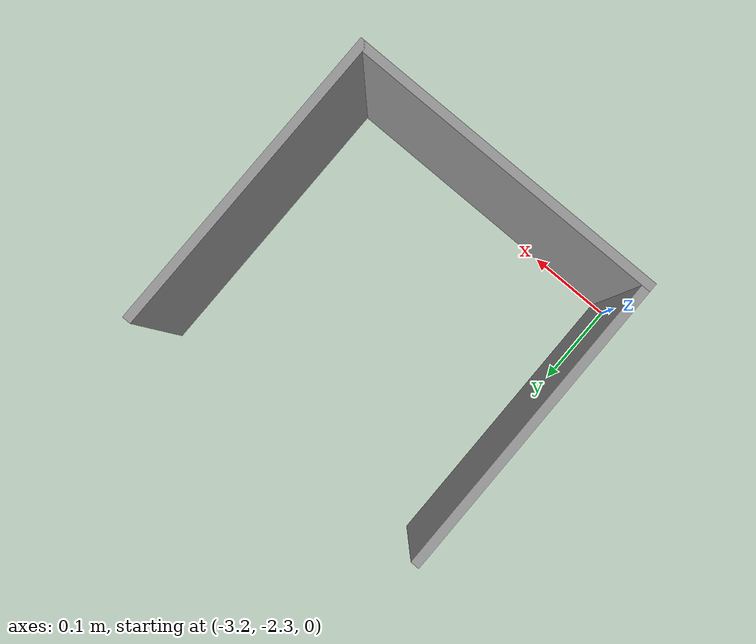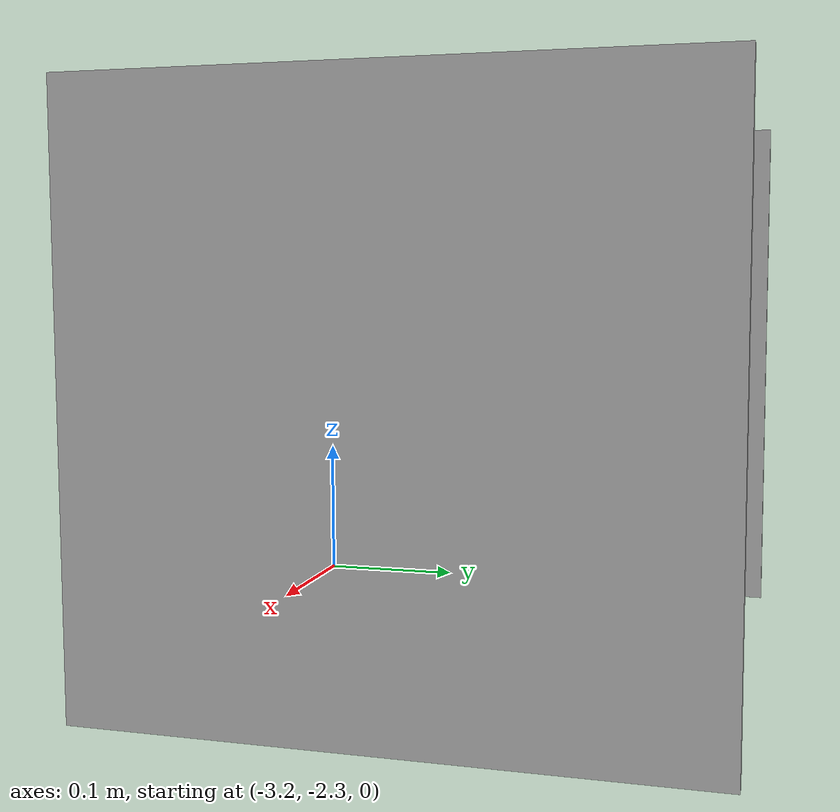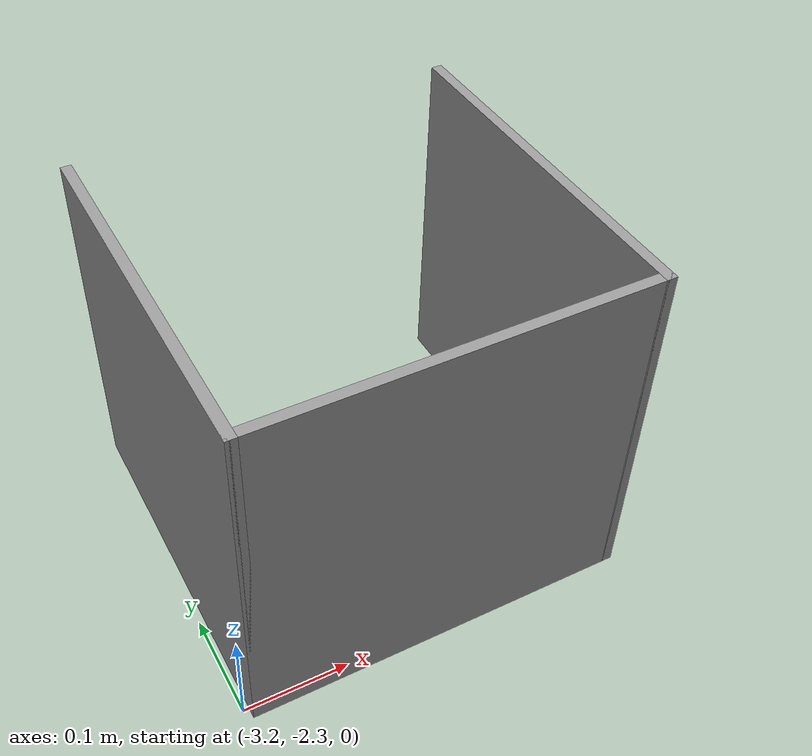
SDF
<?xml version='1.0'?>
<sdf version='1.6'>
  <model name='parking_zone'>
    <pose frame=''>-3.009 -2.1325 0 0 -0 0</pose>
    <link name='Wall_0'>
      <collision name='Wall_0_Collision'>
        <geometry>
          <box>
            <size>0.355 0.01 0.345</size>
          </box>
        </geometry>
        <pose frame=''>0 0 0.1725 0 -0 0</pose>
      </collision>
      <visual name='Wall_0_Visual'>
        <pose frame=''>0 0 0.1725 0 -0 0</pose>
        <geometry>
          <box>
            <size>0.355 0.01 0.345</size>
          </box>
        </geometry>
        <material>
          <script>
            <uri>file://media/materials/scripts/gazebo.material</uri>
            <name>Gazebo/Grey</name>
          </script>
          <ambient>1 1 1 1</ambient>
        </material>
      </visual>
      <pose frame=''>-0.181 0 0 0 0 -1.5708</pose>
    </link>
    <link name='Wall_2'>
      <collision name='Wall_2_Collision'>
        <geometry>
          <box>
            <size>0.372 0.01 0.345</size>
          </box>
        </geometry>
        <pose frame=''>0 0 0.1725 0 -0 0</pose>
      </collision>
      <visual name='Wall_2_Visual'>
        <pose frame=''>0 0 0.1725 0 -0 0</pose>
        <geometry>
          <box>
            <size>0.372 0.01 0.345</size>
          </box>
        </geometry>
        <material>
          <script>
            <uri>file://media/materials/scripts/gazebo.material</uri>
            <name>Gazebo/Grey</name>
          </script>
          <ambient>1 1 1 1</ambient>
        </material>
      </visual>
      <pose frame=''>0 -0.1725 0 0 -0 0</pose>
    </link>
    <link name='Wall_4'>
      <collision name='Wall_4_Collision'>
        <geometry>
          <box>
            <size>0.355 0.01 0.345</size>
          </box>
        </geometry>
        <pose frame=''>0 0 0.1725 0 -0 0</pose>
      </collision>
      <visual name='Wall_4_Visual'>
        <pose frame=''>0 0 0.1725 0 -0 0</pose>
        <geometry>
          <box>
            <size>0.355 0.01 0.345</size>
          </box>
        </geometry>
        <material>
          <script>
            <uri>file://media/materials/scripts/gazebo.material</uri>
            <name>Gazebo/Grey</name>
          </script>
          <ambient>1 1 1 1</ambient>
        </material>
      </visual>
      <pose frame=''>0.181 0 0 0 -0 1.5708</pose>
    </link>
    <static>1</static>
  </model>
</sdf>
